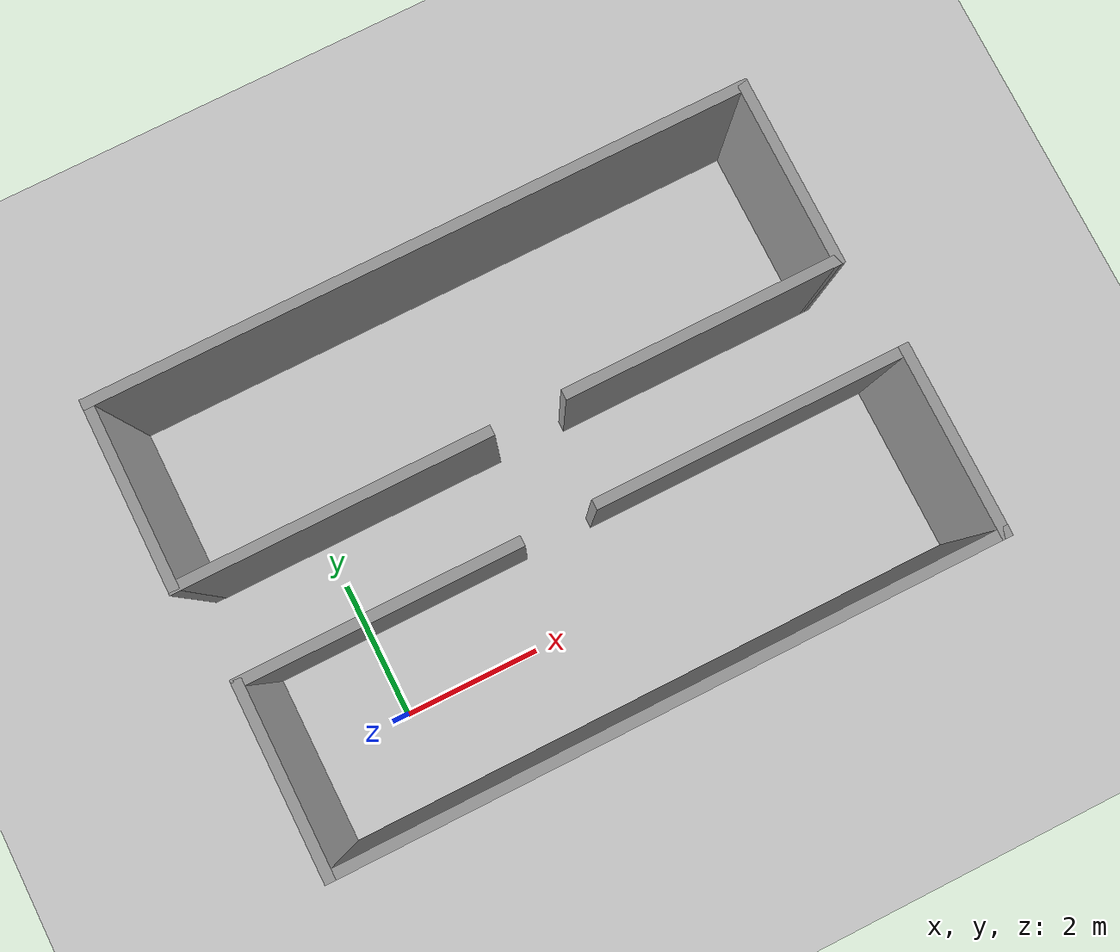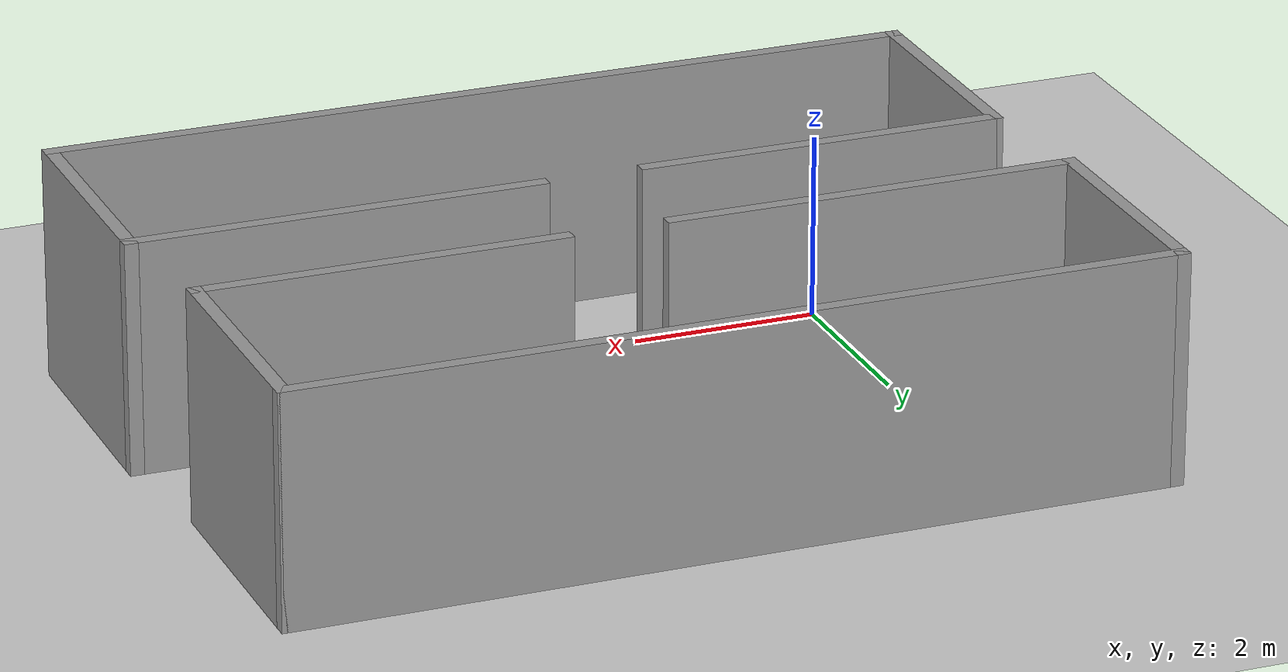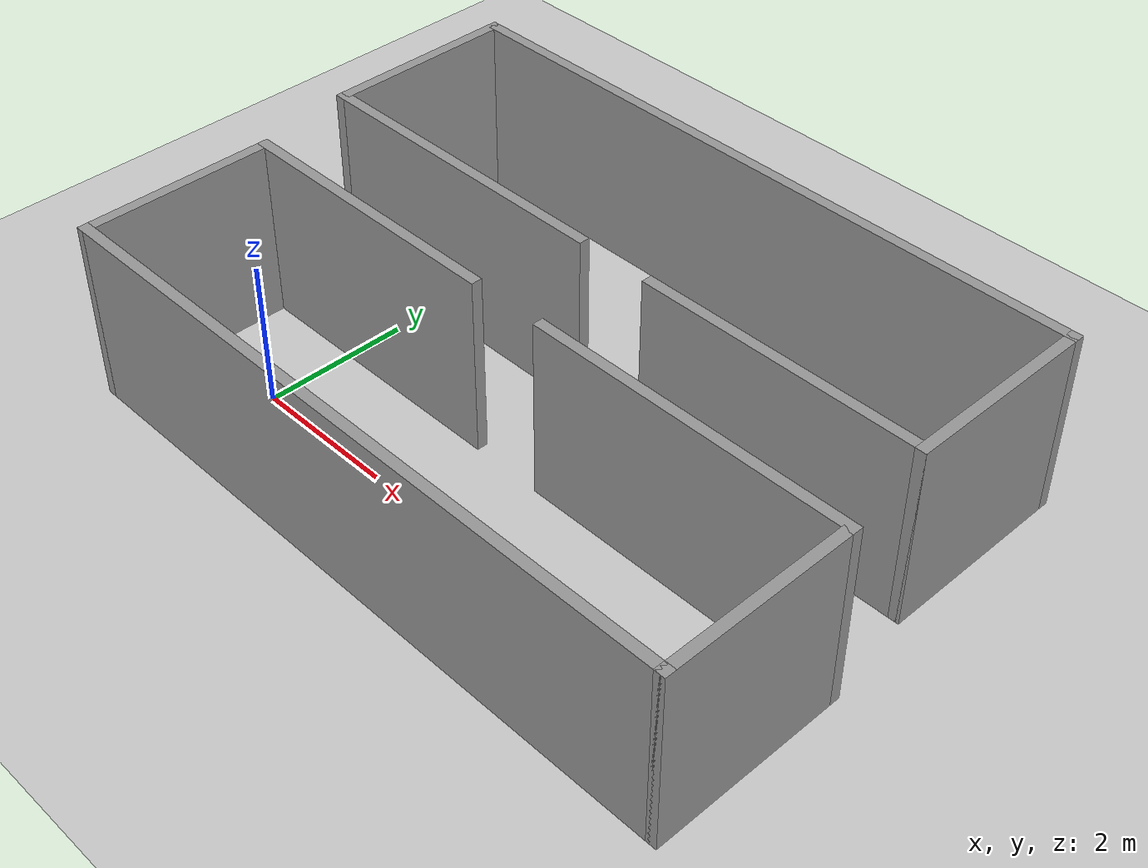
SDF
<sdf version="1.6">
 <world name="default">
  <light name="sun" type="directional">
   <pose>0 0 10 0 -0 0</pose>
   <diffuse>0.8 0.8 0.8 1</diffuse>
   <specular>0.2 0.2 0.2 1</specular>
   <attenuation>
    <range>1000</range>
    <constant>0.9</constant>
    <linear>0.01</linear>
    <quadratic>0.001</quadratic>
   </attenuation>
   <direction>-0.5 0.1 -0.9</direction>
  </light>
  <model name="ground_plane">
   <static>1</static>
   <link name="link">
    <collision name="collision">
     <geometry><plane><normal>0 0 1</normal><size>100 100</size></plane></geometry>
     <surface><friction><ode><mu>100</mu><mu2>50</mu2></ode></friction></surface>
    </collision>
    <visual name="visual">
     <cast_shadows>0</cast_shadows>
     <geometry><plane><normal>0 0 1</normal><size>100 100</size></plane></geometry>
     <material>
      <script><uri>file://media/materials/scripts/gazebo.material</uri><name>Gazebo/Grey</name></script>
     </material>
    </visual>
   </link>
  </model>
  <gravity>0 0 -9.8</gravity>
  <magnetic_field>6e-06 2.3e-05 -4.2e-05</magnetic_field>
  <atmosphere type="adiabatic"/>
  <physics name="default_physics" default="0" type="ode">
   <max_step_size>0.001</max_step_size>
   <real_time_factor>1</real_time_factor>
   <real_time_update_rate>1000</real_time_update_rate>
  </physics>
  <scene><ambient>0.4 0.4 0.4 1</ambient><background>0.7 0.7 0.7 1</background><shadows>1</shadows></scene>
  <audio><device>default</device></audio>
  <spherical_coordinates>
   <surface_model>EARTH_WGS84</surface_model>
   <latitude_deg>0</latitude_deg>
   <longitude_deg>0</longitude_deg>
   <elevation>0</elevation>
   <heading_deg>0</heading_deg>
  </spherical_coordinates>
  <model name="gglin_model">
   <pose>3.21932 -0.018711 0 0 -0 0</pose>
   <link name="Wall_2">
    <collision name="Wall_2_Collision">
     <geometry><box><size>9.5 0.15 2.5</size></box></geometry>
     <pose>0 0 1.25 0 -0 0</pose>
    </collision>
    <visual name="Wall_2_Visual">
     <pose>0 0 1.25 0 -0 0</pose>
     <geometry><box><size>9.5 0.15 2.5</size></box></geometry>
     <material>
      <script><uri>file://media/materials/scripts/gazebo.material</uri><name>Gazebo/Grey</name></script>
      <ambient>1 1 1 1</ambient>
     </material>
     <meta><layer>0</layer></meta>
    </visual>
    <pose>0 -1.3 0 0 -0 0</pose>
   </link>
   <link name="Wall_3">
    <collision name="Wall_3_Collision">
     <geometry><box><size>2.75 0.15 2.5</size></box></geometry>
     <pose>0 0 1.25 0 -0 0</pose>
    </collision>
    <visual name="Wall_3_Visual">
     <pose>0 0 1.25 0 -0 0</pose>
     <geometry><box><size>2.75 0.15 2.5</size></box></geometry>
     <material>
      <script><uri>file://media/materials/scripts/gazebo.material</uri><name>Gazebo/Grey</name></script>
      <ambient>1 1 1 1</ambient>
     </material>
     <meta><layer>0</layer></meta>
    </visual>
    <pose>4.675 0 0 0 -0 1.5708</pose>
   </link>
   <link name="Wall_4">
    <collision name="Wall_4_Collision">
     <geometry><box><size>4.5 0.15 2.5</size></box></geometry>
     <pose>0 0 1.25 0 -0 0</pose>
    </collision>
    <visual name="Wall_4_Visual">
     <pose>0 0 1.25 0 -0 0</pose>
     <geometry><box><size>4.5 0.15 2.5</size></box></geometry>
     <material>
      <script><uri>file://media/materials/scripts/gazebo.material</uri><name>Gazebo/Grey</name></script>
      <ambient>1 1 1 1</ambient>
     </material>
     <meta><layer>0</layer></meta>
    </visual>
    <pose>2.5 1.3 0 0 -0 3.14159</pose>
   </link>
   <link name="Wall_6">
    <collision name="Wall_6_Collision">
     <geometry><box><size>2.75 0.15 2.5</size></box></geometry>
     <pose>0 0 1.25 0 -0 0</pose>
    </collision>
    <visual name="Wall_6_Visual">
     <pose>0 0 1.25 0 -0 0</pose>
     <geometry><box><size>2.75 0.15 2.5</size></box></geometry>
     <material>
      <script><uri>file://media/materials/scripts/gazebo.material</uri><name>Gazebo/Grey</name></script>
      <ambient>1 1 1 1</ambient>
     </material>
     <meta><layer>0</layer></meta>
    </visual>
    <pose>-4.675 0 0 0 -0 1.5708</pose>
   </link>
   <link name="Wall_7">
    <collision name="Wall_7_Collision">
     <geometry><box><size>4 0.15 2.5</size></box></geometry>
     <pose>0 0 1.25 0 -0 0</pose>
    </collision>
    <visual name="Wall_7_Visual">
     <pose>0 0 1.25 0 -0 0</pose>
     <geometry><box><size>4 0.15 2.5</size></box></geometry>
     <material>
      <script><uri>file://media/materials/scripts/gazebo.material</uri><name>Gazebo/Grey</name></script>
      <ambient>1 1 1 1</ambient>
     </material>
     <meta><layer>0</layer></meta>
    </visual>
    <pose>-2.75 1.3 0 0 -0 0</pose>
   </link>
   <static>1</static>
  </model>
  <model name="gglin_model_0">
   <pose>3 4 0 0 0 -3.14159</pose>
   <link name="Wall_2">
    <collision name="Wall_2_Collision">
     <geometry><box><size>9.5 0.15 2.5</size></box></geometry>
     <pose>0 0 1.25 0 -0 0</pose>
    </collision>
    <visual name="Wall_2_Visual">
     <pose>0 0 1.25 0 -0 0</pose>
     <geometry><box><size>9.5 0.15 2.5</size></box></geometry>
     <material>
      <script><uri>file://media/materials/scripts/gazebo.material</uri><name>Gazebo/Grey</name></script>
      <ambient>1 1 1 1</ambient>
     </material>
     <meta><layer>0</layer></meta>
    </visual>
    <pose>0 -1.3 0 0 -0 0</pose>
   </link>
   <link name="Wall_3">
    <collision name="Wall_3_Collision">
     <geometry><box><size>2.75 0.15 2.5</size></box></geometry>
     <pose>0 0 1.25 0 -0 0</pose>
    </collision>
    <visual name="Wall_3_Visual">
     <pose>0 0 1.25 0 -0 0</pose>
     <geometry><box><size>2.75 0.15 2.5</size></box></geometry>
     <material>
      <script><uri>file://media/materials/scripts/gazebo.material</uri><name>Gazebo/Grey</name></script>
      <ambient>1 1 1 1</ambient>
     </material>
     <meta><layer>0</layer></meta>
    </visual>
    <pose>4.675 0 0 0 -0 1.5708</pose>
   </link>
   <link name="Wall_4">
    <collision name="Wall_4_Collision">
     <geometry><box><size>4.5 0.15 2.5</size></box></geometry>
     <pose>0 0 1.25 0 -0 0</pose>
    </collision>
    <visual name="Wall_4_Visual">
     <pose>0 0 1.25 0 -0 0</pose>
     <geometry><box><size>4.5 0.15 2.5</size></box></geometry>
     <material>
      <script><uri>file://media/materials/scripts/gazebo.material</uri><name>Gazebo/Grey</name></script>
      <ambient>1 1 1 1</ambient>
     </material>
     <meta><layer>0</layer></meta>
    </visual>
    <pose>2.5 1.3 0 0 -0 3.14159</pose>
   </link>
   <link name="Wall_6">
    <collision name="Wall_6_Collision">
     <geometry><box><size>2.75 0.15 2.5</size></box></geometry>
     <pose>0 0 1.25 0 -0 0</pose>
    </collision>
    <visual name="Wall_6_Visual">
     <pose>0 0 1.25 0 -0 0</pose>
     <geometry><box><size>2.75 0.15 2.5</size></box></geometry>
     <material>
      <script><uri>file://media/materials/scripts/gazebo.material</uri><name>Gazebo/Grey</name></script>
      <ambient>1 1 1 1</ambient>
     </material>
     <meta><layer>0</layer></meta>
    </visual>
    <pose>-4.675 0 0 0 -0 1.5708</pose>
   </link>
   <link name="Wall_7">
    <collision name="Wall_7_Collision">
     <geometry><box><size>4 0.15 2.5</size></box></geometry>
     <pose>0 0 1.25 0 -0 0</pose>
    </collision>
    <visual name="Wall_7_Visual">
     <pose>0 0 1.25 0 -0 0</pose>
     <geometry><box><size>4 0.15 2.5</size></box></geometry>
     <material>
      <script><uri>file://media/materials/scripts/gazebo.material</uri><name>Gazebo/Grey</name></script>
      <ambient>1 1 1 1</ambient>
     </material>
     <meta><layer>0</layer></meta>
    </visual>
    <pose>-2.75 1.3 0 0 -0 0</pose>
   </link>
   <static>1</static>
  </model>
 </world>
</sdf>
